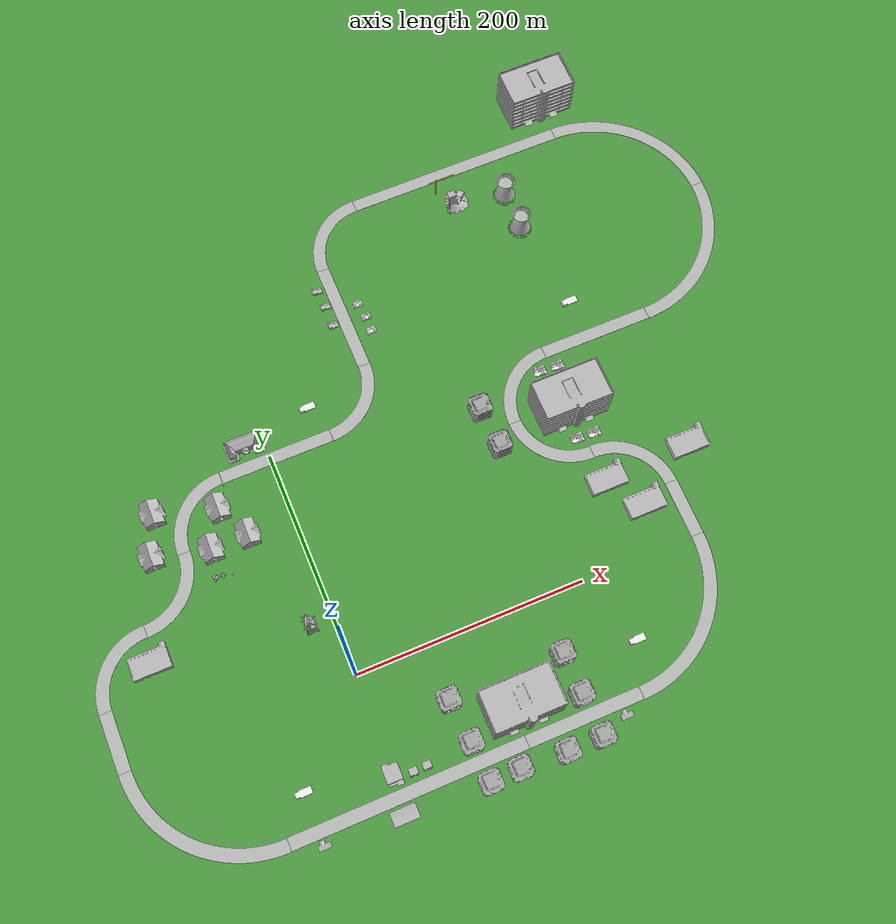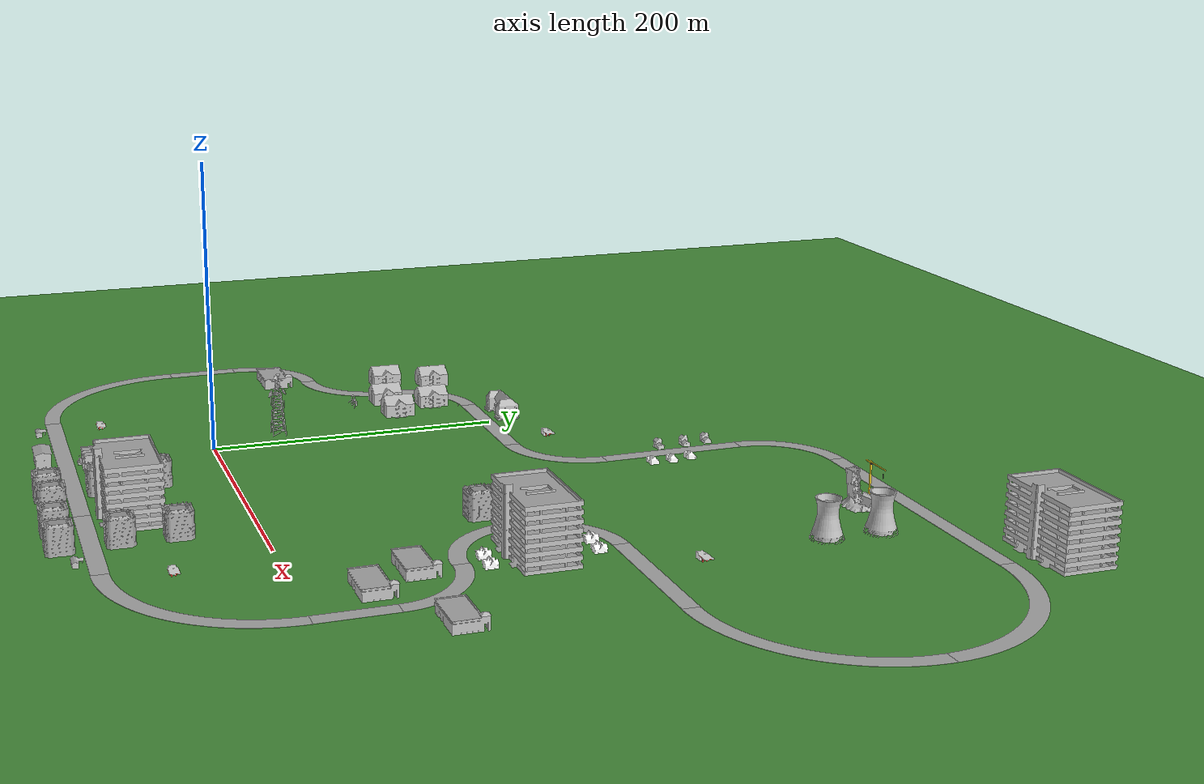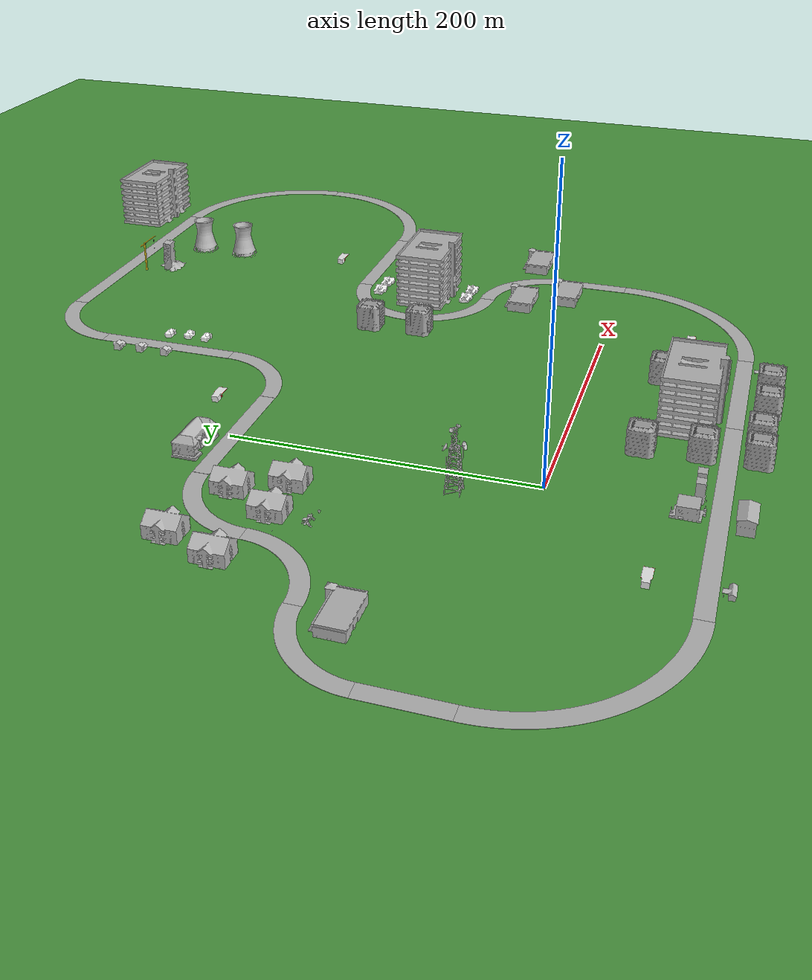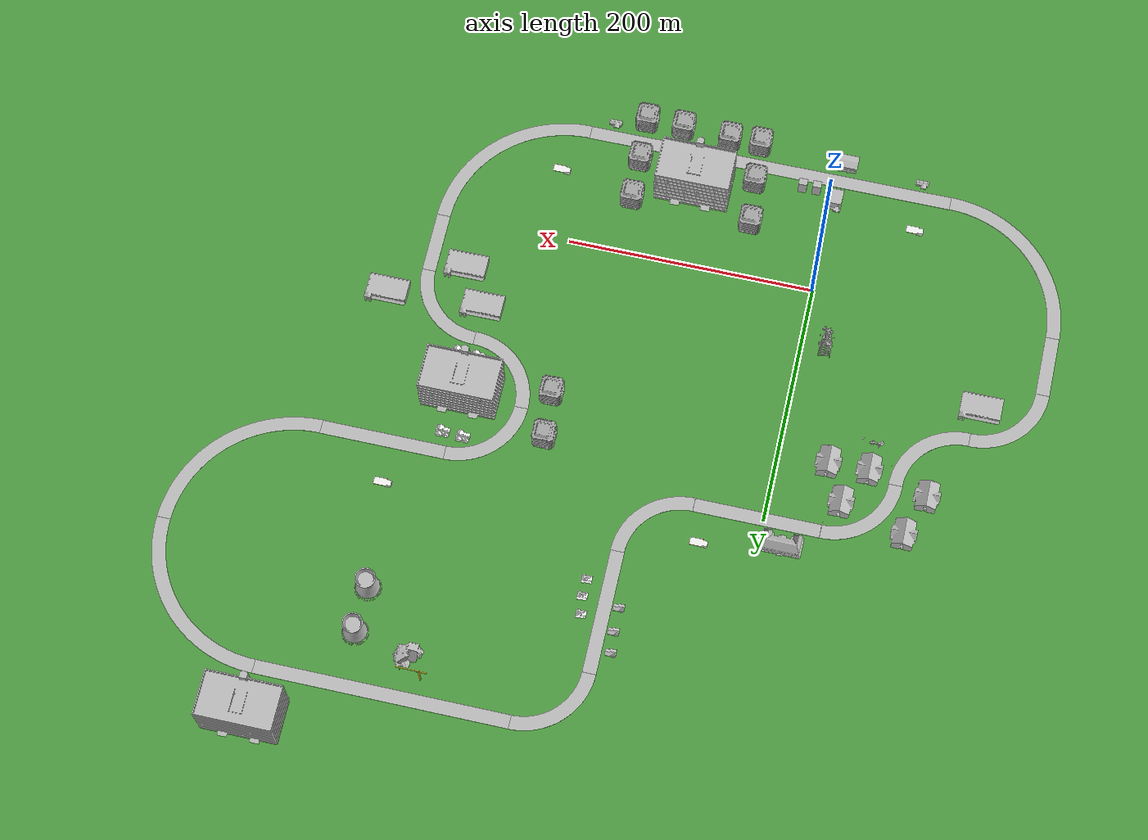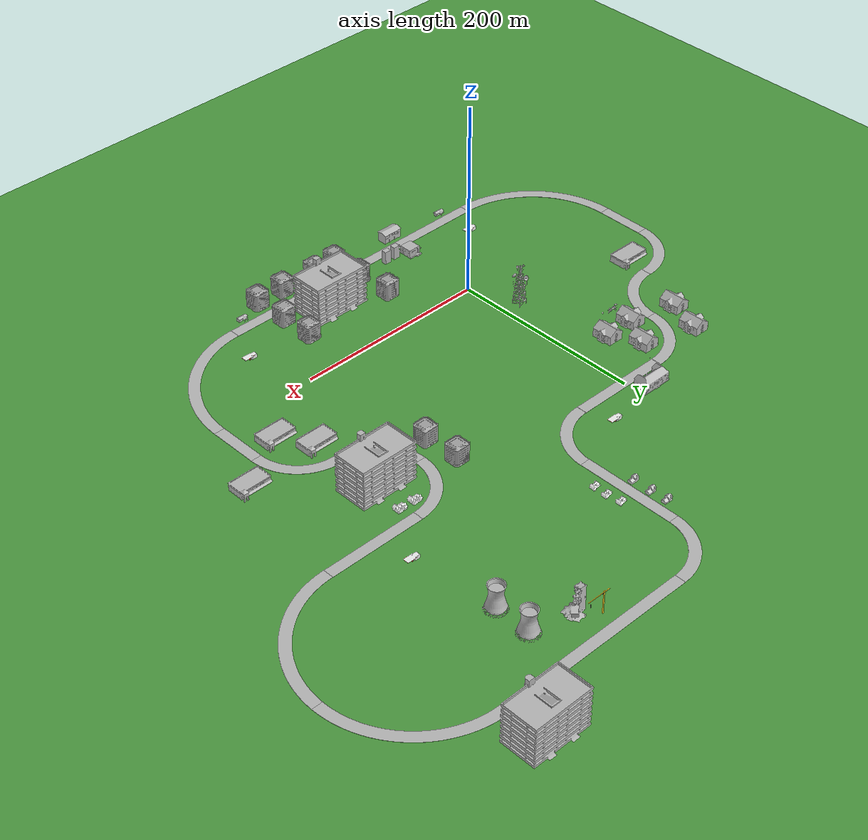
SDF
<sdf version="1.6">
 <world name="default">
  <light name="sun" type="directional">
   <pose>0 0 10 0 -0 0</pose>
   <diffuse>0.8 0.8 0.8 1</diffuse>
   <specular>0.2 0.2 0.2 1</specular>
   <attenuation>
    <range>1000</range>
    <constant>0.9</constant>
    <linear>0.01</linear>
    <quadratic>0.001</quadratic>
   </attenuation>
   <direction>-0.5 0.1 -0.9</direction>
  </light>
  <model name="ground_plane">
   <static>1</static>
   <link name="link">
    <collision name="collision">
     <geometry><plane><normal>0 0 1</normal><size>100 100</size></plane></geometry>
     <surface><friction><ode><mu>100</mu><mu2>50</mu2></ode></friction></surface>
    </collision>
    <visual name="visual">
     <cast_shadows>0</cast_shadows>
     <geometry><plane><normal>0 0 1</normal><size>10000 10000</size></plane></geometry>
     <material>
      <script>
       <uri>model://ds_grass_background/materials/scripts</uri>
       <uri>model://ds_grass_background/materials/textures</uri>
       <name>GrassBackground</name>
      </script>
     </material>
    </visual>
   </link>
  </model>
  <gravity>0 0 -9.8</gravity>
  <magnetic_field>6e-06 2.3e-05 -4.2e-05</magnetic_field>
  <atmosphere type="adiabatic"/>
  <physics name="default_physics" default="0" type="ode">
   <max_step_size>0.001</max_step_size>
   <real_time_factor>1</real_time_factor>
   <real_time_update_rate>1000</real_time_update_rate>
  </physics>
  <scene>
   <sky><clouds><speed>12</speed></clouds></sky>
   <ambient>0.4 0.4 0.4 1</ambient>
   <background>0.7 0.7 0.7 1</background>
   <shadows>1</shadows>
   <grid>0</grid>
  </scene>
  <spherical_coordinates>
   <surface_model>EARTH_WGS84</surface_model>
   <latitude_deg>0</latitude_deg>
   <longitude_deg>0</longitude_deg>
   <elevation>0</elevation>
   <heading_deg>0</heading_deg>
  </spherical_coordinates>
  <model name="(DS) Straight Road - 200m_8">
   <static>1</static>
   <link name="link">
    <inertial>
     <mass>1</mass>
     <inertia><ixx>1</ixx><iyy>1</iyy><izz>1</izz><ixy>0</ixy><ixz>0</ixz><iyz>0</iyz></inertia>
    </inertial>
    <collision name="collision">
     <geometry>
      <mesh><uri>model://ds_straight_road_200m/meshes/straight_road_200m.dae</uri><scale>1 1 1</scale></mesh>
     </geometry>
    </collision>
    <visual name="visual">
     <geometry>
      <mesh><uri>model://ds_straight_road_200m/meshes/straight_road_200m.dae</uri><scale>1 1 1</scale></mesh>
     </geometry>
    </visual>
   </link>
   <pose>4.98041 -90.7828 0 0 -0 0</pose>
  </model>
  <model name="(DS) Straight Road - 100m_0">
   <static>1</static>
   <link name="link">
    <inertial>
     <mass>1</mass>
     <inertia><ixx>1</ixx><iyy>1</iyy><izz>1</izz><ixy>0</ixy><ixz>0</ixz><iyz>0</iyz></inertia>
    </inertial>
    <collision name="collision">
     <geometry>
      <mesh><uri>model://ds_straight_road_100m/meshes/straight_road_100m.dae</uri><scale>1 1 1</scale></mesh>
     </geometry>
    </collision>
    <visual name="visual">
     <geometry>
      <mesh><uri>model://ds_straight_road_100m/meshes/straight_road_100m.dae</uri><scale>1 1 1</scale></mesh>
     </geometry>
    </visual>
   </link>
   <pose>154.969 -90.7906 0 0 -0 0</pose>
  </model>
  <model name="(DS) Curved Road - 100m_3">
   <static>1</static>
   <link name="link">
    <inertial>
     <mass>1</mass>
     <inertia><ixx>1</ixx><iyy>1</iyy><izz>1</izz><ixy>0</ixy><ixz>0</ixz><iyz>0</iyz></inertia>
    </inertial>
    <collision name="collision">
     <geometry>
      <mesh><uri>model://ds_curved_road_100m/meshes/curved_road_100m.dae</uri><scale>1 1 1</scale></mesh>
     </geometry>
    </collision>
    <visual name="visual">
     <geometry>
      <mesh><uri>model://ds_curved_road_100m/meshes/curved_road_100m.dae</uri><scale>1 1 1</scale></mesh>
     </geometry>
    </visual>
   </link>
   <pose>257.705 -53.7644 0 0 -0 0</pose>
  </model>
  <model name="(DS) Straight Road - 50m">
   <static>1</static>
   <link name="link">
    <inertial>
     <mass>1</mass>
     <inertia><ixx>1</ixx><iyy>1</iyy><izz>1</izz><ixy>0</ixy><ixz>0</ixz><iyz>0</iyz></inertia>
    </inertial>
    <collision name="collision">
     <geometry>
      <mesh><uri>model://ds_straight_road_50m/meshes/straight_road_50m.dae</uri><scale>1 1 1</scale></mesh>
     </geometry>
    </collision>
    <visual name="visual">
     <geometry>
      <mesh><uri>model://ds_straight_road_50m/meshes/straight_road_50m.dae</uri><scale>1 1 1</scale></mesh>
     </geometry>
    </visual>
   </link>
   <pose>314.936 23.9712 0 0 0 -1.5707</pose>
  </model>
  <model name="(DS) Curved Road - 100m_7">
   <static>1</static>
   <link name="link">
    <inertial>
     <mass>1</mass>
     <inertia><ixx>1</ixx><iyy>1</iyy><izz>1</izz><ixy>0</ixy><ixz>0</ixz><iyz>0</iyz></inertia>
    </inertial>
    <collision name="collision">
     <geometry>
      <mesh><uri>model://ds_curved_road_100m/meshes/curved_road_100m.dae</uri><scale>1 1 1</scale></mesh>
     </geometry>
    </collision>
    <visual name="visual">
     <geometry>
      <mesh><uri>model://ds_curved_road_100m/meshes/curved_road_100m.dae</uri><scale>1 1 1</scale></mesh>
     </geometry>
    </visual>
   </link>
   <pose>-147.731 -53.7561 0 0 0 -1.5707</pose>
  </model>
  <model name="(DS) Straight Road - 50m_2">
   <static>1</static>
   <link name="link">
    <inertial>
     <mass>1</mass>
     <inertia><ixx>1</ixx><iyy>1</iyy><izz>1</izz><ixy>0</ixy><ixz>0</ixz><iyz>0</iyz></inertia>
    </inertial>
    <collision name="collision">
     <geometry>
      <mesh><uri>model://ds_straight_road_50m/meshes/straight_road_50m.dae</uri><scale>1 1 1</scale></mesh>
     </geometry>
    </collision>
    <visual name="visual">
     <geometry>
      <mesh><uri>model://ds_straight_road_50m/meshes/straight_road_50m.dae</uri><scale>1 1 1</scale></mesh>
     </geometry>
    </visual>
   </link>
   <pose>-204.97 23.9511 0 0 -0 1.5707</pose>
  </model>
  <model name="(DS) Curved Road - 50m_1">
   <static>1</static>
   <link name="link">
    <inertial>
     <mass>1</mass>
     <inertia><ixx>1</ixx><iyy>1</iyy><izz>1</izz><ixy>0</ixy><ixz>0</ixz><iyz>0</iyz></inertia>
    </inertial>
    <collision name="collision">
     <geometry>
      <mesh><uri>model://ds_curved_road_50m/meshes/curved_road_50m.dae</uri><scale>1 1 1</scale></mesh>
     </geometry>
    </collision>
    <visual name="visual">
     <geometry>
      <mesh><uri>model://ds_curved_road_50m/meshes/curved_road_50m.dae</uri><scale>1 1 1</scale></mesh>
     </geometry>
    </visual>
   </link>
   <pose>-172.719 76.5402 0 0 -0 3.14159</pose>
  </model>
  <model name="(DS) Curved Road - 50m_2">
   <static>1</static>
   <link name="link">
    <inertial>
     <mass>1</mass>
     <inertia><ixx>1</ixx><iyy>1</iyy><izz>1</izz><ixy>0</ixy><ixz>0</ixz><iyz>0</iyz></inertia>
    </inertial>
    <collision name="collision">
     <geometry>
      <mesh><uri>model://ds_curved_road_50m/meshes/curved_road_50m.dae</uri><scale>1 1 1</scale></mesh>
     </geometry>
    </collision>
    <visual name="visual">
     <geometry>
      <mesh><uri>model://ds_curved_road_50m/meshes/curved_road_50m.dae</uri><scale>1 1 1</scale></mesh>
     </geometry>
    </visual>
   </link>
   <pose>-117.245 120.825 0 0 -0 0</pose>
  </model>
  <model name="(DS) Curved Road - 50m_7">
   <static>1</static>
   <link name="link">
    <inertial>
     <mass>1</mass>
     <inertia><ixx>1</ixx><iyy>1</iyy><izz>1</izz><ixy>0</ixy><ixz>0</ixz><iyz>0</iyz></inertia>
    </inertial>
    <collision name="collision">
     <geometry>
      <mesh><uri>model://ds_curved_road_50m/meshes/curved_road_50m.dae</uri><scale>1 1 1</scale></mesh>
     </geometry>
    </collision>
    <visual name="visual">
     <geometry>
      <mesh><uri>model://ds_curved_road_50m/meshes/curved_road_50m.dae</uri><scale>1 1 1</scale></mesh>
     </geometry>
    </visual>
   </link>
   <pose>282.694 76.6819 0 0 -0 1.5707</pose>
  </model>
  <model name="(DS) Curved Road - 50m_8">
   <static>1</static>
   <link name="link">
    <inertial>
     <mass>1</mass>
     <inertia><ixx>1</ixx><iyy>1</iyy><izz>1</izz><ixy>0</ixy><ixz>0</ixz><iyz>0</iyz></inertia>
    </inertial>
    <collision name="collision">
     <geometry>
      <mesh><uri>model://ds_curved_road_50m/meshes/curved_road_50m.dae</uri><scale>1 1 1</scale></mesh>
     </geometry>
    </collision>
    <visual name="visual">
     <geometry>
      <mesh><uri>model://ds_curved_road_50m/meshes/curved_road_50m.dae</uri><scale>1 1 1</scale></mesh>
     </geometry>
    </visual>
   </link>
   <pose>227.233 176.317 0 0 -0 3.14159</pose>
  </model>
  <model name="(DS) Curved Road - 50m_9">
   <static>1</static>
   <link name="link">
    <inertial>
     <mass>1</mass>
     <inertia><ixx>1</ixx><iyy>1</iyy><izz>1</izz><ixy>0</ixy><ixz>0</ixz><iyz>0</iyz></inertia>
    </inertial>
    <collision name="collision">
     <geometry>
      <mesh><uri>model://ds_curved_road_50m/meshes/curved_road_50m.dae</uri><scale>1 1 1</scale></mesh>
     </geometry>
    </collision>
    <visual name="visual">
     <geometry>
      <mesh><uri>model://ds_curved_road_50m/meshes/curved_road_50m.dae</uri><scale>1 1 1</scale></mesh>
     </geometry>
    </visual>
   </link>
   <pose>227.236 120.969 0 0 0 -1.5707</pose>
  </model>
  <model name="(DS) Straight Road - 100m_6">
   <static>1</static>
   <link name="link">
    <inertial>
     <mass>1</mass>
     <inertia><ixx>1</ixx><iyy>1</iyy><izz>1</izz><ixy>0</ixy><ixz>0</ixz><iyz>0</iyz></inertia>
    </inertial>
    <collision name="collision">
     <geometry>
      <mesh><uri>model://ds_straight_road_100m/meshes/straight_road_100m.dae</uri><scale>1 1 1</scale></mesh>
     </geometry>
    </collision>
    <visual name="visual">
     <geometry>
      <mesh><uri>model://ds_straight_road_100m/meshes/straight_road_100m.dae</uri><scale>1 1 1</scale></mesh>
     </geometry>
    </visual>
   </link>
   <pose>304.773 208.555 0 0 -0 0</pose>
  </model>
  <model name="(DS) Curved Road - 100m_8">
   <static>1</static>
   <link name="link">
    <inertial>
     <mass>1</mass>
     <inertia><ixx>1</ixx><iyy>1</iyy><izz>1</izz><ixy>0</ixy><ixz>0</ixz><iyz>0</iyz></inertia>
    </inertial>
    <collision name="collision">
     <geometry>
      <mesh><uri>model://ds_curved_road_100m/meshes/curved_road_100m.dae</uri><scale>1 1 1</scale></mesh>
     </geometry>
    </collision>
    <visual name="visual">
     <geometry>
      <mesh><uri>model://ds_curved_road_100m/meshes/curved_road_100m.dae</uri><scale>1 1 1</scale></mesh>
     </geometry>
    </visual>
   </link>
   <pose>407.453 245.59 0 0 -0 0</pose>
  </model>
  <model name="(DS) Curved Road - 100m_11">
   <static>1</static>
   <link name="link">
    <inertial>
     <mass>1</mass>
     <inertia><ixx>1</ixx><iyy>1</iyy><izz>1</izz><ixy>0</ixy><ixz>0</ixz><iyz>0</iyz></inertia>
    </inertial>
    <collision name="collision">
     <geometry>
      <mesh><uri>model://ds_curved_road_100m/meshes/curved_road_100m.dae</uri><scale>1 1 1</scale></mesh>
     </geometry>
    </collision>
    <visual name="visual">
     <geometry>
      <mesh><uri>model://ds_curved_road_100m/meshes/curved_road_100m.dae</uri><scale>1 1 1</scale></mesh>
     </geometry>
    </visual>
   </link>
   <pose>407.459 351.038 0 0 -0 1.5707</pose>
  </model>
  <model name="(DS) Straight Road - 200m_11">
   <static>1</static>
   <link name="link">
    <inertial>
     <mass>1</mass>
     <inertia><ixx>1</ixx><iyy>1</iyy><izz>1</izz><ixy>0</ixy><ixz>0</ixz><iyz>0</iyz></inertia>
    </inertial>
    <collision name="collision">
     <geometry>
      <mesh><uri>model://ds_straight_road_200m/meshes/straight_road_200m.dae</uri><scale>1 1 1</scale></mesh>
     </geometry>
    </collision>
    <visual name="visual">
     <geometry>
      <mesh><uri>model://ds_straight_road_200m/meshes/straight_road_200m.dae</uri><scale>1 1 1</scale></mesh>
     </geometry>
    </visual>
   </link>
   <pose>254.821 408.288 0 0 -0 0</pose>
  </model>
  <model name="(DS) Curved Road - 50m_10">
   <static>1</static>
   <link name="link">
    <inertial>
     <mass>1</mass>
     <inertia><ixx>1</ixx><iyy>1</iyy><izz>1</izz><ixy>0</ixy><ixz>0</ixz><iyz>0</iyz></inertia>
    </inertial>
    <collision name="collision">
     <geometry>
      <mesh><uri>model://ds_curved_road_50m/meshes/curved_road_50m.dae</uri><scale>1 1 1</scale></mesh>
     </geometry>
    </collision>
    <visual name="visual">
     <geometry>
      <mesh><uri>model://ds_curved_road_50m/meshes/curved_road_50m.dae</uri><scale>1 1 1</scale></mesh>
     </geometry>
    </visual>
   </link>
   <pose>82.7978 220.697 0 0 -0 0</pose>
  </model>
  <model name="(DS) Curved Road - 50m_11">
   <static>1</static>
   <link name="link">
    <inertial>
     <mass>1</mass>
     <inertia><ixx>1</ixx><iyy>1</iyy><izz>1</izz><ixy>0</ixy><ixz>0</ixz><iyz>0</iyz></inertia>
    </inertial>
    <collision name="collision">
     <geometry>
      <mesh><uri>model://ds_curved_road_50m/meshes/curved_road_50m.dae</uri><scale>1 1 1</scale></mesh>
     </geometry>
    </collision>
    <visual name="visual">
     <geometry>
      <mesh><uri>model://ds_curved_road_50m/meshes/curved_road_50m.dae</uri><scale>1 1 1</scale></mesh>
     </geometry>
    </visual>
   </link>
   <pose>127.086 376.051 0 0 -0 3.14159</pose>
  </model>
  <model name="(DS) Straight Road - 100m_8">
   <static>1</static>
   <link name="link">
    <inertial>
     <mass>1</mass>
     <inertia><ixx>1</ixx><iyy>1</iyy><izz>1</izz><ixy>0</ixy><ixz>0</ixz><iyz>0</iyz></inertia>
    </inertial>
    <collision name="collision">
     <geometry>
      <mesh><uri>model://ds_straight_road_100m/meshes/straight_road_100m.dae</uri><scale>1 1 1</scale></mesh>
     </geometry>
    </collision>
    <visual name="visual">
     <geometry>
      <mesh><uri>model://ds_straight_road_100m/meshes/straight_road_100m.dae</uri><scale>1 1 1</scale></mesh>
     </geometry>
    </visual>
   </link>
   <pose>94.847 298.317 0 0 -0 1.5707</pose>
  </model>
  <model name="(DS) Curved Road - 50m">
   <static>1</static>
   <link name="link">
    <inertial>
     <mass>1</mass>
     <inertia><ixx>1</ixx><iyy>1</iyy><izz>1</izz><ixy>0</ixy><ixz>0</ixz><iyz>0</iyz></inertia>
    </inertial>
    <collision name="collision">
     <geometry>
      <mesh><uri>model://ds_curved_road_50m/meshes/curved_road_50m.dae</uri><scale>1 1 1</scale></mesh>
     </geometry>
    </collision>
    <visual name="visual">
     <geometry>
      <mesh><uri>model://ds_curved_road_50m/meshes/curved_road_50m.dae</uri><scale>1 1 1</scale></mesh>
     </geometry>
    </visual>
   </link>
   <pose>-72.9369 176.285 0 0 -0 3.14159</pose>
  </model>
  <model name="(DS) Straight Road - 100m_1">
   <static>1</static>
   <link name="link">
    <inertial>
     <mass>1</mass>
     <inertia><ixx>1</ixx><iyy>1</iyy><izz>1</izz><ixy>0</ixy><ixz>0</ixz><iyz>0</iyz></inertia>
    </inertial>
    <collision name="collision">
     <geometry>
      <mesh><uri>model://ds_straight_road_100m/meshes/straight_road_100m.dae</uri><scale>1 1 1</scale></mesh>
     </geometry>
    </collision>
    <visual name="visual">
     <geometry>
      <mesh><uri>model://ds_straight_road_100m/meshes/straight_road_100m.dae</uri><scale>1 1 1</scale></mesh>
     </geometry>
    </visual>
   </link>
   <pose>5.00454 208.562 0 0 -0 0</pose>
  </model>
  <model name="fire_station">
   <static>1</static>
   <link name="link">
    <collision name="main">
     <pose>0 -0.135 5 0 -0 0</pose>
     <geometry><box><size>19.98 9.68 10</size></box></geometry>
    </collision>
    <collision name="front_top">
     <pose>0 4.957 7 0 -0 0</pose>
     <geometry><box><size>20 0.515 6</size></box></geometry>
    </collision>
    <collision name="column_0">
     <pose>9.333 4.957 2 0 -0 0</pose>
     <geometry><box><size>1.315 0.515 4</size></box></geometry>
    </collision>
    <collision name="column_1">
     <pose>3.33 4.957 2 0 -0 0</pose>
     <geometry><box><size>2.63 0.515 4</size></box></geometry>
    </collision>
    <collision name="column_2">
     <pose>-3.33 4.957 2 0 -0 0</pose>
     <geometry><box><size>2.63 0.515 4</size></box></geometry>
    </collision>
    <collision name="column_3">
     <pose>-9.333 4.957 2 0 -0 0</pose>
     <geometry><box><size>1.315 0.515 4</size></box></geometry>
    </collision>
    <collision name="roof_back">
     <pose>0 -2.742 10.467 0.25 -0 0</pose>
     <geometry><box><size>21.47 6.12 0.28</size></box></geometry>
    </collision>
    <collision name="roof_front">
     <pose>0 3.12 10.467 -0.25 0 0</pose>
     <geometry><box><size>21.47 6.12 0.28</size></box></geometry>
    </collision>
    <collision name="roof_base">
     <pose>0 0.188 9.705 0 -0 0</pose>
     <geometry><box><size>21.47 11.86 0.28</size></box></geometry>
    </collision>
    <collision name="roof_filling_0">
     <pose>0 0.188 9.985 0 -0 0</pose>
     <geometry><box><size>21.47 9.53 0.28</size></box></geometry>
    </collision>
    <collision name="roof_filling_1">
     <pose>0 0.188 10.14 0 -0 0</pose>
     <geometry><box><size>21.47 8.41 0.28</size></box></geometry>
    </collision>
    <collision name="roof_filling_2">
     <pose>0 0.188 10.42 0 -0 0</pose>
     <geometry><box><size>21.47 6.25 0.28</size></box></geometry>
    </collision>
    <collision name="roof_filling_3">
     <pose>0 0.188 10.7 0 -0 0</pose>
     <geometry><box><size>21.47 4.05 0.28</size></box></geometry>
    </collision>
    <collision name="roof_filling_4">
     <pose>0 0.188 10.98 0 -0 0</pose>
     <geometry><box><size>21.47 1.83 0.28</size></box></geometry>
    </collision>
    <visual name="visual">
     <geometry><mesh><uri>model://fire_station/meshes/fire_station.dae</uri><scale>1 1 1</scale></mesh></geometry>
    </visual>
   </link>
   <pose>-4.70334 -115.577 0 0 -0 0</pose>
  </model>
  <model name="Gas Station">
   <static>1</static>
   <link name="link">
    <collision name="collision">
     <geometry><mesh><uri>model://gas_station/meshes/gas_station.dae</uri><scale>1 1 1</scale></mesh></geometry>
    </collision>
    <visual name="visual">
     <geometry><mesh><uri>model://gas_station/meshes/gas_station.dae</uri><scale>1 1 1</scale></mesh></geometry>
     <material>
      <script>
       <uri>model://gas_station/materials/scripts</uri>
       <uri>model://gas_station/materials/textures</uri>
       <name>GasStation/Diffuse</name>
      </script>
      <shader type="normal_map_object_space"><normal_map>GasStation_Normal.png</normal_map></shader>
     </material>
    </visual>
   </link>
   <pose>-71.443 -69.3392 0 0 -0 0</pose>
  </model>
  <model name="post_office">
   <static>1</static>
   <link name="link">
    <collision name="collision">
     <geometry><mesh><uri>model://post_office/meshes/post_office.dae</uri><scale>1 1 1</scale></mesh></geometry>
    </collision>
    <visual name="visual">
     <geometry><mesh><uri>model://post_office/meshes/post_office.dae</uri><scale>1 1 1</scale></mesh></geometry>
    </visual>
   </link>
   <pose>-69.8975 -112.805 0 0 -0 0</pose>
  </model>
  <model name="police_station">
   <static>1</static>
   <link name="link">
    <collision name="collision_main">
     <pose>0 0 4.28998 0 -0 0</pose>
     <geometry><box><size>13.037 13.037 8.57995</size></box></geometry>
    </collision>
    <collision name="collision_landing">
     <pose>0 0 0.464086 0 -0 0</pose>
     <geometry><box><size>13.037 16.2446 0.928173</size></box></geometry>
    </collision>
    <visual name="visual">
     <geometry>
      <mesh><uri>model://police_station/meshes/police_station.dae</uri><scale>1 1 1</scale></mesh>
     </geometry>
    </visual>
   </link>
   <pose>-2.03109 -82.9646 0 0 -0 0</pose>
  </model>
  <model name="school">
   <static>1</static>
   <link name="link">
    <collision name="collision">
     <geometry><mesh><uri>model://school/meshes/school.dae</uri><scale>1 1 1</scale></mesh></geometry>
    </collision>
    <visual name="visual">
     <geometry><mesh><uri>model://school/meshes/school.dae</uri><scale>1 1 1</scale></mesh></geometry>
    </visual>
   </link>
   <pose>-17.3949 218.479 0 0 -0 0</pose>
  </model>
  <model name="Office Building">
   <static>1</static>
   <link name="link">
    <collision name="collision">
     <geometry>
      <mesh><uri>model://office_building/meshes/office_building.dae</uri><scale>1 1 1</scale></mesh>
     </geometry>
    </collision>
    <visual name="visual">
     <geometry>
      <mesh><uri>model://office_building/meshes/office_building.dae</uri><scale>1 1 1</scale></mesh>
     </geometry>
    </visual>
   </link>
   <pose>64.2087 -84.4154 0 0 -0 0</pose>
  </model>
  <model name="parking_garage">
   <static>1</static>
   <link name="link">
    <collision name="collision">
     <geometry>
      <mesh><uri>model://parking_garage/meshes/parking_garage.dae</uri><scale>1 1 1</scale></mesh>
     </geometry>
    </collision>
    <visual name="visual">
     <geometry>
      <mesh><uri>model://parking_garage/meshes/parking_garage.dae</uri><scale>1 1 1</scale></mesh>
     </geometry>
    </visual>
   </link>
   <pose>111.713 -71.4302 0 0 -0 0</pose>
  </model>
  <model name="Office Building_0">
   <static>1</static>
   <link name="link">
    <collision name="collision">
     <geometry>
      <mesh><uri>model://office_building/meshes/office_building.dae</uri><scale>1 1 1</scale></mesh>
     </geometry>
    </collision>
    <visual name="visual">
     <geometry>
      <mesh><uri>model://office_building/meshes/office_building.dae</uri><scale>1 1 1</scale></mesh>
     </geometry>
    </visual>
   </link>
   <pose>60.6318 -47.5554 0 0 -0 0</pose>
  </model>
  <model name="Office Building_1">
   <static>1</static>
   <link name="link">
    <collision name="collision">
     <geometry>
      <mesh><uri>model://office_building/meshes/office_building.dae</uri><scale>1 1 1</scale></mesh>
     </geometry>
    </collision>
    <visual name="visual">
     <geometry>
      <mesh><uri>model://office_building/meshes/office_building.dae</uri><scale>1 1 1</scale></mesh>
     </geometry>
    </visual>
   </link>
   <pose>159.426 -83.6564 0 0 -0 0</pose>
  </model>
  <model name="Office Building_2">
   <static>1</static>
   <link name="link">
    <collision name="collision">
     <geometry>
      <mesh><uri>model://office_building/meshes/office_building.dae</uri><scale>1 1 1</scale></mesh>
     </geometry>
    </collision>
    <visual name="visual">
     <geometry>
      <mesh><uri>model://office_building/meshes/office_building.dae</uri><scale>1 1 1</scale></mesh>
     </geometry>
    </visual>
   </link>
   <pose>158.821 -48.6393 0 0 -0 0</pose>
  </model>
  <model name="Office Building_3">
   <static>1</static>
   <link name="link">
    <collision name="collision">
     <geometry>
      <mesh><uri>model://office_building/meshes/office_building.dae</uri><scale>1 1 1</scale></mesh>
     </geometry>
    </collision>
    <visual name="visual">
     <geometry>
      <mesh><uri>model://office_building/meshes/office_building.dae</uri><scale>1 1 1</scale></mesh>
     </geometry>
    </visual>
   </link>
   <pose>66.0582 -118.091 0 0 -0 0</pose>
  </model>
  <model name="Office Building_4">
   <static>1</static>
   <link name="link">
    <collision name="collision">
     <geometry>
      <mesh><uri>model://office_building/meshes/office_building.dae</uri><scale>1 1 1</scale></mesh>
     </geometry>
    </collision>
    <visual name="visual">
     <geometry>
      <mesh><uri>model://office_building/meshes/office_building.dae</uri><scale>1 1 1</scale></mesh>
     </geometry>
    </visual>
   </link>
   <pose>91.5855 -117.542 0 0 -0 0</pose>
  </model>
  <model name="Office Building_5">
   <static>1</static>
   <link name="link">
    <collision name="collision">
     <geometry>
      <mesh><uri>model://office_building/meshes/office_building.dae</uri><scale>1 1 1</scale></mesh>
     </geometry>
    </collision>
    <visual name="visual">
     <geometry>
      <mesh><uri>model://office_building/meshes/office_building.dae</uri><scale>1 1 1</scale></mesh>
     </geometry>
    </visual>
   </link>
   <pose>130.785 -119.468 0 0 -0 0</pose>
  </model>
  <model name="Office Building_6">
   <static>1</static>
   <link name="link">
    <collision name="collision">
     <geometry>
      <mesh><uri>model://office_building/meshes/office_building.dae</uri><scale>1 1 1</scale></mesh>
     </geometry>
    </collision>
    <visual name="visual">
     <geometry>
      <mesh><uri>model://office_building/meshes/office_building.dae</uri><scale>1 1 1</scale></mesh>
     </geometry>
    </visual>
   </link>
   <pose>161.204 -119.473 0 0 -0 0</pose>
  </model>
  <model name="post_office_0">
   <static>1</static>
   <link name="link">
    <collision name="collision">
     <geometry><mesh><uri>model://post_office/meshes/post_office.dae</uri><scale>1 1 1</scale></mesh></geometry>
    </collision>
    <visual name="visual">
     <geometry><mesh><uri>model://post_office/meshes/post_office.dae</uri><scale>1 1 1</scale></mesh></geometry>
    </visual>
   </link>
   <pose>186.341 -112.911 0 0 -0 0</pose>
  </model>
  <model name="apartment">
   <static>1</static>
   <link name="link">
    <collision name="collision">
     <geometry><mesh><uri>model://apartment/meshes/apartment.dae</uri><scale>1 1 1</scale></mesh></geometry>
    </collision>
    <visual name="visual">
     <geometry><mesh><uri>model://apartment/meshes/apartment.dae</uri><scale>1 1 1</scale></mesh></geometry>
    </visual>
   </link>
   <pose>-120.406 154.403 0 0 -0 0</pose>
  </model>
  <model name="apartment_0">
   <static>1</static>
   <link name="link">
    <collision name="collision">
     <geometry><mesh><uri>model://apartment/meshes/apartment.dae</uri><scale>1 1 1</scale></mesh></geometry>
    </collision>
    <visual name="visual">
     <geometry><mesh><uri>model://apartment/meshes/apartment.dae</uri><scale>1 1 1</scale></mesh></geometry>
    </visual>
   </link>
   <pose>-108.165 188.661 0 0 -0 0</pose>
  </model>
  <model name="apartment_1">
   <static>1</static>
   <link name="link">
    <collision name="collision">
     <geometry><mesh><uri>model://apartment/meshes/apartment.dae</uri><scale>1 1 1</scale></mesh></geometry>
    </collision>
    <visual name="visual">
     <geometry><mesh><uri>model://apartment/meshes/apartment.dae</uri><scale>1 1 1</scale></mesh></geometry>
    </visual>
   </link>
   <pose>-72.612 142.063 0 0 -0 0</pose>
  </model>
  <model name="apartment_2">
   <static>1</static>
   <link name="link">
    <collision name="collision">
     <geometry><mesh><uri>model://apartment/meshes/apartment.dae</uri><scale>1 1 1</scale></mesh></geometry>
    </collision>
    <visual name="visual">
     <geometry><mesh><uri>model://apartment/meshes/apartment.dae</uri><scale>1 1 1</scale></mesh></geometry>
    </visual>
   </link>
   <pose>-55.8955 173.067 0 0 -0 0</pose>
  </model>
  <model name="apartment_3">
   <static>1</static>
   <link name="link">
    <collision name="collision">
     <geometry><mesh><uri>model://apartment/meshes/apartment.dae</uri><scale>1 1 1</scale></mesh></geometry>
    </collision>
    <visual name="visual">
     <geometry><mesh><uri>model://apartment/meshes/apartment.dae</uri><scale>1 1 1</scale></mesh></geometry>
    </visual>
   </link>
   <pose>-40.2386 142.694 0 0 -0 0</pose>
  </model>
  <model name="law_office">
   <static>1</static>
   <link name="link">
    <collision name="collision">
     <pose>0 0 6.96244 0 -0 0</pose>
     <geometry><box><size>6.84401 5.43165 13.9249</size></box></geometry>
    </collision>
    <visual name="visual">
     <geometry><mesh><uri>model://law_office/meshes/law_office.dae</uri><scale>1 1 1</scale></mesh></geometry>
    </visual>
   </link>
   <pose>13.5816 -87.8272 0 0 -0 0</pose>
  </model>
  <model name="law_office_0">
   <static>1</static>
   <link name="link">
    <collision name="collision">
     <pose>0 0 6.96244 0 -0 0</pose>
     <geometry><box><size>6.84401 5.43165 13.9249</size></box></geometry>
    </collision>
    <visual name="visual">
     <geometry><mesh><uri>model://law_office/meshes/law_office.dae</uri><scale>1 1 1</scale></mesh></geometry>
    </visual>
   </link>
   <pose>25.0998 -87.5294 0 0 -0 0</pose>
  </model>
  <model name="playground">
   <static>1</static>
   <link name="link">
    <collision name="collision">
     <geometry><mesh><uri>model://playground/meshes/playground.dae</uri><scale>1 1 1</scale></mesh></geometry>
    </collision>
    <visual name="visual">
     <geometry><mesh><uri>model://playground/meshes/playground.dae</uri><scale>1 1 1</scale></mesh></geometry>
    </visual>
   </link>
   <pose>-73.9663 117.965 0 0 -0 0</pose>
  </model>
  <model name="radio_tower">
   <static>1</static>
   <link name="link">
    <collision name="collision">
     <geometry><mesh><uri>model://radio_tower/meshes/radio_tower.dae</uri><scale>1 1 1</scale></mesh></geometry>
    </collision>
    <visual name="visual">
     <geometry><mesh><uri>model://radio_tower/meshes/radio_tower.dae</uri><scale>1 1 1</scale></mesh></geometry>
    </visual>
   </link>
   <pose>-19.5672 49.1762 0 0 -0 0</pose>
  </model>
  <model name="parking_garage_0">
   <static>1</static>
   <link name="link">
    <collision name="collision">
     <geometry>
      <mesh><uri>model://parking_garage/meshes/parking_garage.dae</uri><scale>1 1 1</scale></mesh>
     </geometry>
    </collision>
    <visual name="visual">
     <geometry>
      <mesh><uri>model://parking_garage/meshes/parking_garage.dae</uri><scale>1 1 1</scale></mesh>
     </geometry>
    </visual>
   </link>
   <pose>351.226 435.611 0 0 -0 0</pose>
  </model>
  <model name="reactor">
   <static>1</static>
   <link name="link">
    <collision name="collision">
     <geometry><mesh><uri>model://reactor/meshes/reactor.dae</uri><scale>1 1 1</scale></mesh></geometry>
    </collision>
    <visual name="visual">
     <geometry><mesh><uri>model://reactor/meshes/reactor.dae</uri><scale>1 1 1</scale></mesh></geometry>
    </visual>
   </link>
   <pose>286.068 355.578 0 0 -0 0</pose>
  </model>
  <model name="reactor_0">
   <static>1</static>
   <link name="link">
    <collision name="collision">
     <geometry><mesh><uri>model://reactor/meshes/reactor.dae</uri><scale>1 1 1</scale></mesh></geometry>
    </collision>
    <visual name="visual">
     <geometry><mesh><uri>model://reactor/meshes/reactor.dae</uri><scale>1 1 1</scale></mesh></geometry>
    </visual>
   </link>
   <pose>285.459 319.222 0 0 -0 0</pose>
  </model>
  <model name="fire_hydrant">
   <static>1</static>
   <link name="link">
    <collision name="collision">
     <geometry><mesh><uri>model://fire_hydrant/meshes/fire_hydrant.dae</uri><scale>1 1 1</scale></mesh></geometry>
    </collision>
    <visual name="visual">
     <geometry><mesh><uri>model://fire_hydrant/meshes/fire_hydrant.dae</uri><scale>1 1 1</scale></mesh></geometry>
    </visual>
   </link>
   <pose>-45.2426 190.915 0 0 -0 0</pose>
  </model>
  <model name="fountain">
   <static>1</static>
   <link name="link">
    <collision name="collision">
     <geometry><mesh><uri>model://fountain/meshes/fountain.dae</uri><scale>1 1 1</scale></mesh></geometry>
    </collision>
    <visual name="visual">
     <geometry><mesh><uri>model://fountain/meshes/fountain.dae</uri><scale>1 1 1</scale></mesh></geometry>
    </visual>
   </link>
   <pose>-63.447 115.776 0 0 -0 0</pose>
  </model>
  <model name="Mailbox">
   <link name="link">
    <collision name="collision">
     <geometry><mesh><uri>model://mailbox/meshes/mailbox.dae</uri><scale>1 1 1</scale></mesh></geometry>
    </collision>
    <visual name="visual">
     <geometry><mesh><uri>model://mailbox/meshes/mailbox.dae</uri><scale>1 1 1</scale></mesh></geometry>
     <material>
      <script>
       <uri>model://mailbox/materials/scripts</uri>
       <uri>model://mailbox/materials/textures</uri>
       <name>Mailbox/Diffuse</name>
      </script>
     </material>
    </visual>
    <inertial>
     <inertia><ixx>1</ixx><ixy>0</ixy><ixz>0</ixz><iyy>1</iyy><iyz>0</iyz><izz>1</izz></inertia>
     <mass>1</mass>
    </inertial>
   </link>
   <pose>-89.0431 133.704 -9e-06 -1e-05 0 0</pose>
  </model>
  <model name="Gas Station_0">
   <static>1</static>
   <link name="link">
    <collision name="collision">
     <geometry><mesh><uri>model://gas_station/meshes/gas_station.dae</uri><scale>1 1 1</scale></mesh></geometry>
    </collision>
    <visual name="visual">
     <geometry><mesh><uri>model://gas_station/meshes/gas_station.dae</uri><scale>1 1 1</scale></mesh></geometry>
     <material>
      <script>
       <uri>model://gas_station/materials/scripts</uri>
       <uri>model://gas_station/materials/textures</uri>
       <name>GasStation/Diffuse</name>
      </script>
      <shader type="normal_map_object_space"><normal_map>GasStation_Normal.png</normal_map></shader>
     </material>
    </visual>
   </link>
   <pose>44.5559 228.994 0 0 -0 0</pose>
  </model>
  <model name="Gas Station_1">
   <static>1</static>
   <link name="link">
    <collision name="collision">
     <geometry><mesh><uri>model://gas_station/meshes/gas_station.dae</uri><scale>1 1 1</scale></mesh></geometry>
    </collision>
    <visual name="visual">
     <geometry><mesh><uri>model://gas_station/meshes/gas_station.dae</uri><scale>1 1 1</scale></mesh></geometry>
     <material>
      <script>
       <uri>model://gas_station/materials/scripts</uri>
       <uri>model://gas_station/materials/textures</uri>
       <name>GasStation/Diffuse</name>
      </script>
      <shader type="normal_map_object_space"><normal_map>GasStation_Normal.png</normal_map></shader>
     </material>
    </visual>
   </link>
   <pose>295.147 233.891 0 0 -0 0</pose>
  </model>
  <model name="Gas Station_2">
   <static>1</static>
   <link name="link">
    <collision name="collision">
     <geometry><mesh><uri>model://gas_station/meshes/gas_station.dae</uri><scale>1 1 1</scale></mesh></geometry>
    </collision>
    <visual name="visual">
     <geometry><mesh><uri>model://gas_station/meshes/gas_station.dae</uri><scale>1 1 1</scale></mesh></geometry>
     <material>
      <script>
       <uri>model://gas_station/materials/scripts</uri>
       <uri>model://gas_station/materials/textures</uri>
       <name>GasStation/Diffuse</name>
      </script>
      <shader type="normal_map_object_space"><normal_map>GasStation_Normal.png</normal_map></shader>
     </material>
    </visual>
   </link>
   <pose>219.554 -61.1977 0 0 -0 0</pose>
  </model>
  <model name="grocery_store">
   <static>1</static>
   <link name="link">
    <collision name="collision">
     <pose>0 0 4.04605 0 -0 0</pose>
     <geometry><box><size>32.1985 17.5425 8.09209</size></box></geometry>
    </collision>
    <visual name="visual">
     <pose>0 -1.96155 0 0 -0 0</pose>
     <geometry>
      <mesh><uri>model://grocery_store/meshes/grocery_store.dae</uri><scale>1 1 1</scale></mesh>
     </geometry>
    </visual>
   </link>
   <pose>-149.089 71.1346 0 0 -0 0</pose>
  </model>
  <model name="grocery_store_0">
   <static>1</static>
   <link name="link">
    <collision name="collision">
     <pose>0 0 4.04605 0 -0 0</pose>
     <geometry><box><size>32.1985 17.5425 8.09209</size></box></geometry>
    </collision>
    <visual name="visual">
     <pose>0 -1.96155 0 0 -0 0</pose>
     <geometry>
      <mesh><uri>model://grocery_store/meshes/grocery_store.dae</uri><scale>1 1 1</scale></mesh>
     </geometry>
    </visual>
   </link>
   <pose>254.676 70.3113 0 0 -0 0</pose>
  </model>
  <model name="House 1">
   <static>1</static>
   <link name="link">
    <collision name="collision">
     <geometry><mesh><uri>model://house_1/meshes/house_1.dae</uri><scale>1 1 1</scale></mesh></geometry>
    </collision>
    <visual name="visual">
     <geometry><mesh><uri>model://house_1/meshes/house_1.dae</uri><scale>1 1 1</scale></mesh></geometry>
     <material>
      <script>
       <uri>model://house_1/materials/scripts</uri>
       <uri>model://house_1/materials/textures</uri>
       <name>House_1/Diffuse</name>
      </script>
      <shader type="normal_map_object_space"><normal_map>House_1_Normal.png</normal_map></shader>
     </material>
    </visual>
   </link>
   <pose>243.883 183.292 0 0 -0 0</pose>
  </model>
  <model name="House 1_0">
   <static>1</static>
   <link name="link">
    <collision name="collision">
     <geometry><mesh><uri>model://house_1/meshes/house_1.dae</uri><scale>1 1 1</scale></mesh></geometry>
    </collision>
    <visual name="visual">
     <geometry><mesh><uri>model://house_1/meshes/house_1.dae</uri><scale>1 1 1</scale></mesh></geometry>
     <material>
      <script>
       <uri>model://house_1/materials/scripts</uri>
       <uri>model://house_1/materials/textures</uri>
       <name>House_1/Diffuse</name>
      </script>
      <shader type="normal_map_object_space"><normal_map>House_1_Normal.png</normal_map></shader>
     </material>
    </visual>
   </link>
   <pose>260.276 182.291 0 0 -0 0</pose>
  </model>
  <model name="House 1_1">
   <static>1</static>
   <link name="link">
    <collision name="collision">
     <geometry><mesh><uri>model://house_1/meshes/house_1.dae</uri><scale>1 1 1</scale></mesh></geometry>
    </collision>
    <visual name="visual">
     <geometry><mesh><uri>model://house_1/meshes/house_1.dae</uri><scale>1 1 1</scale></mesh></geometry>
     <material>
      <script>
       <uri>model://house_1/materials/scripts</uri>
       <uri>model://house_1/materials/textures</uri>
       <name>House_1/Diffuse</name>
      </script>
      <shader type="normal_map_object_space"><normal_map>House_1_Normal.png</normal_map></shader>
     </material>
    </visual>
   </link>
   <pose>248.087 114.543 0 0 -0 0</pose>
  </model>
  <model name="House 1_2">
   <static>1</static>
   <link name="link">
    <collision name="collision">
     <geometry><mesh><uri>model://house_1/meshes/house_1.dae</uri><scale>1 1 1</scale></mesh></geometry>
    </collision>
    <visual name="visual">
     <geometry><mesh><uri>model://house_1/meshes/house_1.dae</uri><scale>1 1 1</scale></mesh></geometry>
     <material>
      <script>
       <uri>model://house_1/materials/scripts</uri>
       <uri>model://house_1/materials/textures</uri>
       <name>House_1/Diffuse</name>
      </script>
      <shader type="normal_map_object_space"><normal_map>House_1_Normal.png</normal_map></shader>
     </material>
    </visual>
   </link>
   <pose>263.504 113.769 0 0 -0 0</pose>
  </model>
  <model name="House 2">
   <static>1</static>
   <link name="link">
    <collision name="collision">
     <geometry><mesh><uri>model://house_2/meshes/house_2.dae</uri><scale>1 1 1</scale></mesh></geometry>
    </collision>
    <visual name="visual">
     <geometry><mesh><uri>model://house_2/meshes/house_2.dae</uri><scale>1 1 1</scale></mesh></geometry>
     <material>
      <script>
       <uri>model://house_2/materials/scripts</uri>
       <uri>model://house_2/materials/textures</uri>
       <name>House_2/Diffuse</name>
      </script>
     </material>
    </visual>
   </link>
   <pose>120.379 304.153 0 0 -0 0</pose>
  </model>
  <model name="House 2_0">
   <static>1</static>
   <link name="link">
    <collision name="collision">
     <geometry><mesh><uri>model://house_2/meshes/house_2.dae</uri><scale>1 1 1</scale></mesh></geometry>
    </collision>
    <visual name="visual">
     <geometry><mesh><uri>model://house_2/meshes/house_2.dae</uri><scale>1 1 1</scale></mesh></geometry>
     <material>
      <script>
       <uri>model://house_2/materials/scripts</uri>
       <uri>model://house_2/materials/textures</uri>
       <name>House_2/Diffuse</name>
      </script>
     </material>
    </visual>
   </link>
   <pose>122.547 289.794 0 0 -0 0</pose>
  </model>
  <model name="House 2_1">
   <static>1</static>
   <link name="link">
    <collision name="collision">
     <geometry><mesh><uri>model://house_2/meshes/house_2.dae</uri><scale>1 1 1</scale></mesh></geometry>
    </collision>
    <visual name="visual">
     <geometry><mesh><uri>model://house_2/meshes/house_2.dae</uri><scale>1 1 1</scale></mesh></geometry>
     <material>
      <script>
       <uri>model://house_2/materials/scripts</uri>
       <uri>model://house_2/materials/textures</uri>
       <name>House_2/Diffuse</name>
      </script>
     </material>
    </visual>
   </link>
   <pose>122.17 275.984 0 0 -0 0</pose>
  </model>
  <model name="House 3">
   <static>1</static>
   <link name="link">
    <collision name="collision">
     <geometry><mesh><uri>model://house_3/meshes/house_3.dae</uri><scale>1 1 1</scale></mesh></geometry>
    </collision>
    <visual name="visual">
     <geometry><mesh><uri>model://house_3/meshes/house_3.dae</uri><scale>1 1 1</scale></mesh></geometry>
     <material>
      <script>
       <uri>model://house_3/materials/scripts</uri>
       <uri>model://house_3/materials/textures</uri>
       <name>House_3/Diffuse</name>
      </script>
     </material>
    </visual>
   </link>
   <pose>92.4835 329.698 0 0 -0 0</pose>
  </model>
  <model name="House 3_0">
   <static>1</static>
   <link name="link">
    <collision name="collision">
     <geometry><mesh><uri>model://house_3/meshes/house_3.dae</uri><scale>1 1 1</scale></mesh></geometry>
    </collision>
    <visual name="visual">
     <geometry><mesh><uri>model://house_3/meshes/house_3.dae</uri><scale>1 1 1</scale></mesh></geometry>
     <material>
      <script>
       <uri>model://house_3/materials/scripts</uri>
       <uri>model://house_3/materials/textures</uri>
       <name>House_3/Diffuse</name>
      </script>
     </material>
    </visual>
   </link>
   <pose>93.9583 312.838 0 0 -0 0</pose>
  </model>
  <model name="House 3_1">
   <static>1</static>
   <link name="link">
    <collision name="collision">
     <geometry><mesh><uri>model://house_3/meshes/house_3.dae</uri><scale>1 1 1</scale></mesh></geometry>
    </collision>
    <visual name="visual">
     <geometry><mesh><uri>model://house_3/meshes/house_3.dae</uri><scale>1 1 1</scale></mesh></geometry>
     <material>
      <script>
       <uri>model://house_3/materials/scripts</uri>
       <uri>model://house_3/materials/textures</uri>
       <name>House_3/Diffuse</name>
      </script>
     </material>
    </visual>
   </link>
   <pose>94.0497 293.501 0 0 -0 0</pose>
  </model>
  <model name="parking_garage_1">
   <static>1</static>
   <link name="link">
    <collision name="collision">
     <geometry>
      <mesh><uri>model://parking_garage/meshes/parking_garage.dae</uri><scale>1 1 1</scale></mesh>
     </geometry>
    </collision>
    <visual name="visual">
     <geometry>
      <mesh><uri>model://parking_garage/meshes/parking_garage.dae</uri><scale>1 1 1</scale></mesh>
     </geometry>
    </visual>
   </link>
   <pose>253.254 145.49 0 0 -0 0</pose>
  </model>
  <model name="Office Building_7">
   <static>1</static>
   <link name="link">
    <collision name="collision">
     <geometry>
      <mesh><uri>model://office_building/meshes/office_building.dae</uri><scale>1 1 1</scale></mesh>
     </geometry>
    </collision>
    <visual name="visual">
     <geometry>
      <mesh><uri>model://office_building/meshes/office_building.dae</uri><scale>1 1 1</scale></mesh>
     </geometry>
    </visual>
   </link>
   <pose>181.225 169.598 0 0 -0 0</pose>
  </model>
  <model name="Office Building_8">
   <static>1</static>
   <link name="link">
    <collision name="collision">
     <geometry>
      <mesh><uri>model://office_building/meshes/office_building.dae</uri><scale>1 1 1</scale></mesh>
     </geometry>
    </collision>
    <visual name="visual">
     <geometry>
      <mesh><uri>model://office_building/meshes/office_building.dae</uri><scale>1 1 1</scale></mesh>
     </geometry>
    </visual>
   </link>
   <pose>183.732 132.805 0 0 -0 0</pose>
  </model>
  <model name="tower_crane">
   <static>1</static>
   <link name="link">
    <collision name="collision">
     <geometry><mesh><uri>model://tower_crane/meshes/tower_crane.dae</uri><scale>1 1 1</scale></mesh></geometry>
    </collision>
    <visual name="visual">
     <geometry><mesh><uri>model://tower_crane/meshes/tower_crane.dae</uri><scale>1 1 1</scale></mesh></geometry>
    </visual>
   </link>
   <pose>228.348 381.087 0 0 -0 0</pose>
  </model>
  <model name="collapsed_industrial">
   <static>1</static>
   <link name="link">
    <collision name="collision">
     <geometry>
      <mesh><uri>model://collapsed_industrial/meshes/collapsed_industrial.dae</uri><scale>1 1 1</scale></mesh>
     </geometry>
    </collision>
    <visual name="visual">
     <geometry>
      <mesh><uri>model://collapsed_industrial/meshes/collapsed_industrial.dae</uri><scale>1 1 1</scale></mesh>
     </geometry>
    </visual>
   </link>
   <pose>241.583 364.366 0 0 -0 0</pose>
  </model>
  <model name="grocery_store_1">
   <static>1</static>
   <link name="link">
    <collision name="collision">
     <pose>0 0 4.04605 0 -0 0</pose>
     <geometry><box><size>32.1985 17.5425 8.09209</size></box></geometry>
    </collision>
    <visual name="visual">
     <pose>0 -1.96155 0 0 -0 0</pose>
     <geometry>
      <mesh><uri>model://grocery_store/meshes/grocery_store.dae</uri><scale>1 1 1</scale></mesh>
     </geometry>
    </visual>
   </link>
   <pose>332.234 73.4625 0 0 -0 0</pose>
  </model>
  <model name="grocery_store_2">
   <static>1</static>
   <link name="link">
    <collision name="collision">
     <pose>0 0 4.04605 0 -0 0</pose>
     <geometry><box><size>32.1985 17.5425 8.09209</size></box></geometry>
    </collision>
    <visual name="visual">
     <pose>0 -1.96155 0 0 -0 0</pose>
     <geometry>
      <mesh><uri>model://grocery_store/meshes/grocery_store.dae</uri><scale>1 1 1</scale></mesh>
     </geometry>
    </visual>
   </link>
   <pose>275.298 39.3344 0 0 -0 0</pose>
  </model>
 </world>
</sdf>
